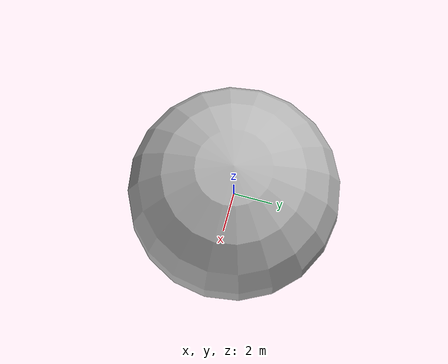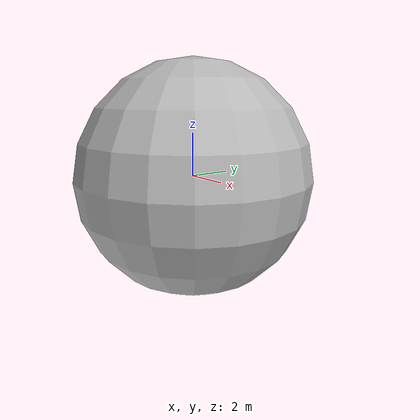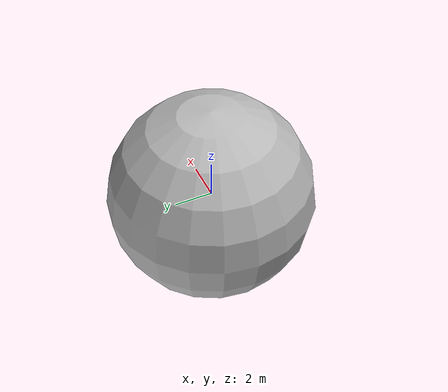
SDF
<?xml version="1.0" ?>
<sdf version="1.6">
  <model name="moon">
    <static>true</static>
    <link name="moon_link">
      <visual name="moon_visual">
        <geometry><sphere><radius>5.4</radius></sphere></geometry>
        <material><script><uri>model://moon/materials/scripts</uri><uri>model://moon/materials/textures</uri><name>ASTRO/Moon</name></script></material>
      </visual>
    </link>
  </model>
</sdf>
